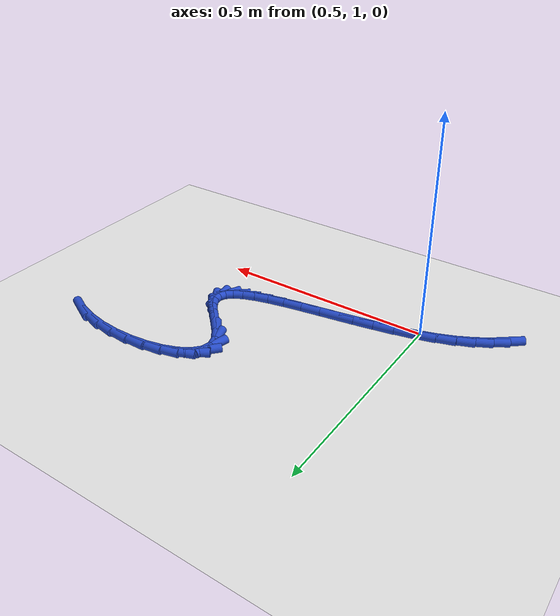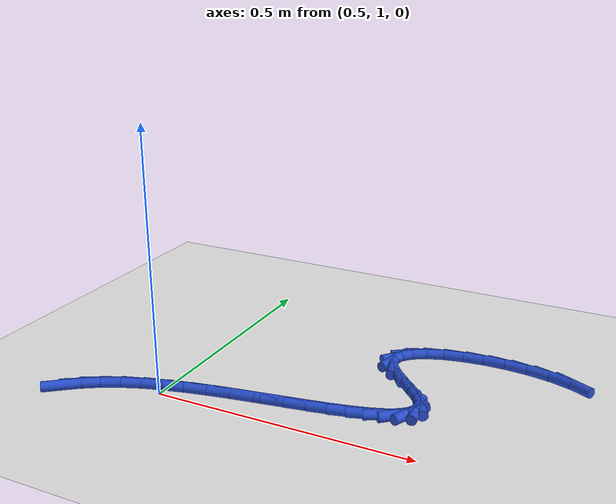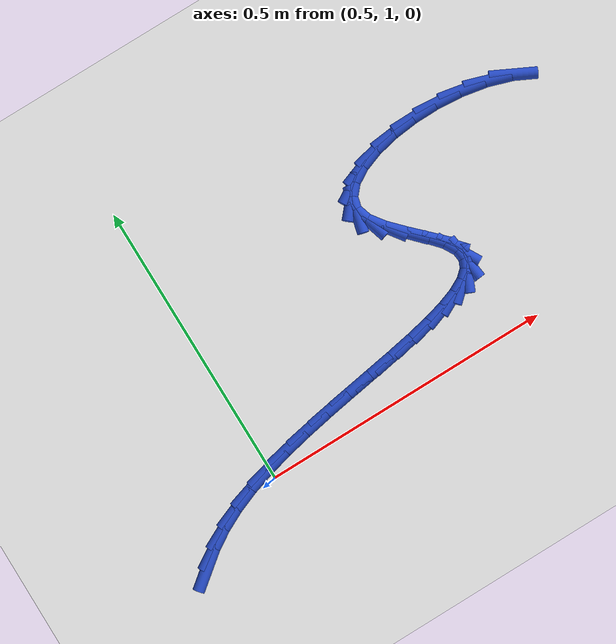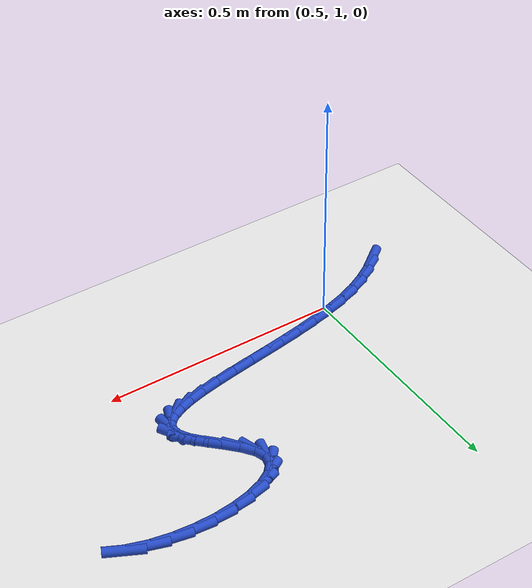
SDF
<sdf version="1.6">
 <world name="default">
  <model name="ground_plane">
   <static>1</static>
   <link name="link">
    <collision name="collision">
     <geometry><plane><normal>0 0 1</normal><size>100 100</size></plane></geometry>
     <surface><friction><ode><mu>100</mu><mu2>50</mu2></ode></friction></surface>
    </collision>
    <visual name="visual">
     <cast_shadows>0</cast_shadows>
     <geometry><plane><normal>0 0 1</normal><size>100 100</size></plane></geometry>
     <material>
      <script><uri>file://media/materials/scripts/gazebo.material</uri><name>Gazebo/WhiteGlow</name></script>
     </material>
    </visual>
   </link>
  </model>
  <model name="line">
   <link name="link_32">
    <pose>0.33232368794220474 0.9345395138687543 0.01 0 1.57 0.6674799219659406</pose>
    <collision name="collision">
     <geometry><cylinder><radius>0.01</radius><length>0.08</length></cylinder></geometry>
    </collision>
    <visual name="visual">
     <material>
      <script><name>Gazebo/Blue</name><uri>file://media/materials/scripts/gazebo.material</uri></script>
     </material>
     <geometry><cylinder><radius>0.01</radius><length>0.08</length></cylinder></geometry>
    </visual>
   </link>
   <link name="link_33">
    <pose>0.35845276269961285 0.9551334182911259 0.01 0 1.57 0.5598737728286589</pose>
    <collision name="collision">
     <geometry><cylinder><radius>0.01</radius><length>0.08</length></cylinder></geometry>
    </collision>
    <visual name="visual">
     <material>
      <script><name>Gazebo/Blue</name><uri>file://media/materials/scripts/gazebo.material</uri></script>
     </material>
     <geometry><cylinder><radius>0.01</radius><length>0.08</length></cylinder></geometry>
    </visual>
   </link>
   <link name="link_34">
    <pose>0.38820202227261824 0.9737794719710365 0.01 0 1.57 0.462366194935475</pose>
    <collision name="collision">
     <geometry><cylinder><radius>0.01</radius><length>0.08</length></cylinder></geometry>
    </collision>
    <visual name="visual">
     <material>
      <script><name>Gazebo/Blue</name><uri>file://media/materials/scripts/gazebo.material</uri></script>
     </material>
     <geometry><cylinder><radius>0.01</radius><length>0.08</length></cylinder></geometry>
    </visual>
   </link>
   <link name="link_35">
    <pose>0.4215832749769152 0.9904166635215741 0.01 0 1.57 0.3748559651297808</pose>
    <collision name="collision">
     <geometry><cylinder><radius>0.01</radius><length>0.08</length></cylinder></geometry>
    </collision>
    <visual name="visual">
     <material>
      <script><name>Gazebo/Blue</name><uri>file://media/materials/scripts/gazebo.material</uri></script>
     </material>
     <geometry><cylinder><radius>0.01</radius><length>0.08</length></cylinder></geometry>
    </visual>
   </link>
   <link name="link_36">
    <pose>0.4586076440816507 1.0049842804329159 0.01 0 1.57 0.3005961824647087</pose>
    <collision name="collision">
     <geometry><cylinder><radius>0.01</radius><length>0.08</length></cylinder></geometry>
    </collision>
    <visual name="visual">
     <material>
      <script><name>Gazebo/Blue</name><uri>file://media/materials/scripts/gazebo.material</uri></script>
     </material>
     <geometry><cylinder><radius>0.01</radius><length>0.08</length></cylinder></geometry>
    </visual>
   </link>
   <link name="link_37">
    <pose>0.49905495005863604 1.0175225246619781 0.01 0 1.57 0.2455334116099302</pose>
    <collision name="collision">
     <geometry><cylinder><radius>0.01</radius><length>0.08</length></cylinder></geometry>
    </collision>
    <visual name="visual">
     <material>
      <script><name>Gazebo/Blue</name><uri>file://media/materials/scripts/gazebo.material</uri></script>
     </material>
     <geometry><cylinder><radius>0.01</radius><length>0.08</length></cylinder></geometry>
    </visual>
   </link>
   <link name="link_38">
    <pose>0.5421384283040468 1.0283187920233734 0.01 0 1.57 0.20615525021939676</pose>
    <collision name="collision">
     <geometry><cylinder><radius>0.01</radius><length>0.08</length></cylinder></geometry>
    </collision>
    <visual name="visual">
     <material>
      <script><name>Gazebo/Blue</name><uri>file://media/materials/scripts/gazebo.material</uri></script>
     </material>
     <geometry><cylinder><radius>0.01</radius><length>0.08</length></cylinder></geometry>
    </visual>
   </link>
   <link name="link_39">
    <pose>0.5869861566062353 1.0376976315122262 0.01 0 1.57 0.1792097871674355</pose>
    <collision name="collision">
     <geometry><cylinder><radius>0.01</radius><length>0.08</length></cylinder></geometry>
    </collision>
    <visual name="visual">
     <material>
      <script><name>Gazebo/Blue</name><uri>file://media/materials/scripts/gazebo.material</uri></script>
     </material>
     <geometry><cylinder><radius>0.01</radius><length>0.08</length></cylinder></geometry>
    </visual>
   </link>
   <link name="link_40">
    <pose>0.6327262127535523 1.0459835921236607 0.01 0 1.57 0.16282779220886007</pose>
    <collision name="collision">
     <geometry><cylinder><radius>0.01</radius><length>0.08</length></cylinder></geometry>
    </collision>
    <visual name="visual">
     <material>
      <script><name>Gazebo/Blue</name><uri>file://media/materials/scripts/gazebo.material</uri></script>
     </material>
     <geometry><cylinder><radius>0.01</radius><length>0.08</length></cylinder></geometry>
    </visual>
   </link>
   <link name="link_41">
    <pose>0.6784866745343503 1.0535012228528013 0.01 0 1.57 0.15623173205487667</pose>
    <collision name="collision">
     <geometry><cylinder><radius>0.01</radius><length>0.08</length></cylinder></geometry>
    </collision>
    <visual name="visual">
     <material>
      <script><name>Gazebo/Blue</name><uri>file://media/materials/scripts/gazebo.material</uri></script>
     </material>
     <geometry><cylinder><radius>0.01</radius><length>0.08</length></cylinder></geometry>
    </visual>
   </link>
   <link name="link_42">
    <pose>0.7233956197369801 1.0605750726947727 0.01 0 1.57 0.15966967953347624</pose>
    <collision name="collision">
     <geometry><cylinder><radius>0.01</radius><length>0.08</length></cylinder></geometry>
    </collision>
    <visual name="visual">
     <material>
      <script><name>Gazebo/Blue</name><uri>file://media/materials/scripts/gazebo.material</uri></script>
     </material>
     <geometry><cylinder><radius>0.01</radius><length>0.08</length></cylinder></geometry>
    </visual>
   </link>
   <link name="link_43">
    <pose>0.7665811261497935 1.0675296906446987 0.01 0 1.57 0.17459976128015814</pose>
    <collision name="collision">
     <geometry><cylinder><radius>0.01</radius><length>0.08</length></cylinder></geometry>
    </collision>
    <visual name="visual">
     <material>
      <script><name>Gazebo/Blue</name><uri>file://media/materials/scripts/gazebo.material</uri></script>
     </material>
     <geometry><cylinder><radius>0.01</radius><length>0.08</length></cylinder></geometry>
    </visual>
   </link>
   <link name="link_44">
    <pose>0.8071712715611429 1.0746896256977045 0.01 0 1.57 0.20425585236347724</pose>
    <collision name="collision">
     <geometry><cylinder><radius>0.01</radius><length>0.08</length></cylinder></geometry>
    </collision>
    <visual name="visual">
     <material>
      <script><name>Gazebo/Blue</name><uri>file://media/materials/scripts/gazebo.material</uri></script>
     </material>
     <geometry><cylinder><radius>0.01</radius><length>0.08</length></cylinder></geometry>
    </visual>
   </link>
   <link name="link_45">
    <pose>0.8442941337593788 1.0823794268489142 0.01 0 1.57 0.2549527005088165</pose>
    <collision name="collision">
     <geometry><cylinder><radius>0.01</radius><length>0.08</length></cylinder></geometry>
    </collision>
    <visual name="visual">
     <material>
      <script><name>Gazebo/Blue</name><uri>file://media/materials/scripts/gazebo.material</uri></script>
     </material>
     <geometry><cylinder><radius>0.01</radius><length>0.08</length></cylinder></geometry>
    </visual>
   </link>
   <link name="link_46">
    <pose>0.8770777905328535 1.090923643093452 0.01 0 1.57 0.3390248917568101</pose>
    <collision name="collision">
     <geometry><cylinder><radius>0.01</radius><length>0.08</length></cylinder></geometry>
    </collision>
    <visual name="visual">
     <material>
      <script><name>Gazebo/Blue</name><uri>file://media/materials/scripts/gazebo.material</uri></script>
     </material>
     <geometry><cylinder><radius>0.01</radius><length>0.08</length></cylinder></geometry>
    </visual>
   </link>
   <link name="link_47">
    <pose>0.9046503196699183 1.1006468234264424 0.01 0 1.57 0.48142815267958466</pose>
    <collision name="collision">
     <geometry><cylinder><radius>0.01</radius><length>0.08</length></cylinder></geometry>
    </collision>
    <visual name="visual">
     <material>
      <script><name>Gazebo/Blue</name><uri>file://media/materials/scripts/gazebo.material</uri></script>
     </material>
     <geometry><cylinder><radius>0.01</radius><length>0.08</length></cylinder></geometry>
    </visual>
   </link>
   <link name="link_48">
    <pose>0.926139798958925 1.1118735168430103 0.01 0 1.57 0.731814446814402</pose>
    <collision name="collision">
     <geometry><cylinder><radius>0.01</radius><length>0.08</length></cylinder></geometry>
    </collision>
    <visual name="visual">
     <material>
      <script><name>Gazebo/Blue</name><uri>file://media/materials/scripts/gazebo.material</uri></script>
     </material>
     <geometry><cylinder><radius>0.01</radius><length>0.08</length></cylinder></geometry>
    </visual>
   </link>
   <link name="link_49">
    <pose>0.9406743061882248 1.1249282723382792 0.01 0 1.57 1.155387865178105</pose>
    <collision name="collision">
     <geometry><cylinder><radius>0.01</radius><length>0.08</length></cylinder></geometry>
    </collision>
    <visual name="visual">
     <material>
      <script><name>Gazebo/Blue</name><uri>file://media/materials/scripts/gazebo.material</uri></script>
     </material>
     <geometry><cylinder><radius>0.01</radius><length>0.08</length></cylinder></geometry>
    </visual>
   </link>
   <link name="link_50">
    <pose>0.9473819191461701 1.1401356389073745 0.01 0 1.57 -1.4586727570723999</pose>
    <collision name="collision">
     <geometry><cylinder><radius>0.01</radius><length>0.08</length></cylinder></geometry>
    </collision>
    <visual name="visual">
     <material>
      <script><name>Gazebo/Blue</name><uri>file://media/materials/scripts/gazebo.material</uri></script>
     </material>
     <geometry><cylinder><radius>0.01</radius><length>0.08</length></cylinder></geometry>
    </visual>
   </link>
   <link name="link_51">
    <pose>0.9453907156211117 1.1578201655454199 0.01 0 1.57 -1.057074999462949</pose>
    <collision name="collision">
     <geometry><cylinder><radius>0.01</radius><length>0.08</length></cylinder></geometry>
    </collision>
    <visual name="visual">
     <material>
      <script><name>Gazebo/Blue</name><uri>file://media/materials/scripts/gazebo.material</uri></script>
     </material>
     <geometry><cylinder><radius>0.01</radius><length>0.08</length></cylinder></geometry>
    </visual>
   </link>
   <link name="link_52">
    <pose>0.9338316665987543 1.178305686006102 0.01 0 1.57 -0.8479654065867887</pose>
    <collision name="collision">
     <geometry><cylinder><radius>0.01</radius><length>0.08</length></cylinder></geometry>
    </collision>
    <visual name="visual">
     <material>
      <script><name>Gazebo/Blue</name><uri>file://media/materials/scripts/gazebo.material</uri></script>
     </material>
     <geometry><cylinder><radius>0.01</radius><length>0.08</length></cylinder></geometry>
    </visual>
   </link>
   <link name="link_53">
    <pose>0.9133313871890353 1.2015462885595396 0.01 0 1.57 -0.7873486888170741</pose>
    <collision name="collision">
     <geometry><cylinder><radius>0.01</radius><length>0.08</length></cylinder></geometry>
    </collision>
    <visual name="visual">
     <material>
      <script><name>Gazebo/Blue</name><uri>file://media/materials/scripts/gazebo.material</uri></script>
     </material>
     <geometry><cylinder><radius>0.01</radius><length>0.08</length></cylinder></geometry>
    </visual>
   </link>
   <link name="link_54">
    <pose>0.8884517037724283 1.2265232186915362 0.01 0 1.57 -0.8152047304556284</pose>
    <collision name="collision">
     <geometry><cylinder><radius>0.01</radius><length>0.08</length></cylinder></geometry>
    </collision>
    <visual name="visual">
     <material>
      <script><name>Gazebo/Blue</name><uri>file://media/materials/scripts/gazebo.material</uri></script>
     </material>
     <geometry><cylinder><radius>0.01</radius><length>0.08</length></cylinder></geometry>
    </visual>
   </link>
   <link name="link_55">
    <pose>0.8643939701368678 1.2520596211962296 0.01 0 1.57 -0.9443266670071779</pose>
    <collision name="collision">
     <geometry><cylinder><radius>0.01</radius><length>0.08</length></cylinder></geometry>
    </collision>
    <visual name="visual">
     <material>
      <script><name>Gazebo/Blue</name><uri>file://media/materials/scripts/gazebo.material</uri></script>
     </material>
     <geometry><cylinder><radius>0.01</radius><length>0.08</length></cylinder></geometry>
    </visual>
   </link>
   <link name="link_56">
    <pose>0.8463595400702895 1.276978640867758 0.01 0 1.57 -1.2756371198639962</pose>
    <collision name="collision">
     <geometry><cylinder><radius>0.01</radius><length>0.08</length></cylinder></geometry>
    </collision>
    <visual name="visual">
     <material>
      <script><name>Gazebo/Blue</name><uri>file://media/materials/scripts/gazebo.material</uri></script>
     </material>
     <geometry><cylinder><radius>0.01</radius><length>0.08</length></cylinder></geometry>
    </visual>
   </link>
   <link name="link_57">
    <pose>0.8393194399337724 1.3001338079470532 0.01 0 1.57 1.3215550835016123</pose>
    <collision name="collision">
     <geometry><cylinder><radius>0.01</radius><length>0.08</length></cylinder></geometry>
    </collision>
    <visual name="visual">
     <material>
      <script><name>Gazebo/Blue</name><uri>file://media/materials/scripts/gazebo.material</uri></script>
     </material>
     <geometry><cylinder><radius>0.01</radius><length>0.08</length></cylinder></geometry>
    </visual>
   </link>
   <link name="link_58">
    <pose>0.8445949910264087 1.3208601321084388 0.01 0 1.57 0.8447809884516944</pose>
    <collision name="collision">
     <geometry><cylinder><radius>0.01</radius><length>0.08</length></cylinder></geometry>
    </collision>
    <visual name="visual">
     <material>
      <script><name>Gazebo/Blue</name><uri>file://media/materials/scripts/gazebo.material</uri></script>
     </material>
     <geometry><cylinder><radius>0.01</radius><length>0.08</length></cylinder></geometry>
    </visual>
   </link>
   <link name="link_59">
    <pose>0.860590202516286 1.3388774831089025 0.01 0 1.57 0.5409068925253919</pose>
    <collision name="collision">
     <geometry><cylinder><radius>0.01</radius><length>0.08</length></cylinder></geometry>
    </collision>
    <visual name="visual">
     <material>
      <script><name>Gazebo/Blue</name><uri>file://media/materials/scripts/gazebo.material</uri></script>
     </material>
     <geometry><cylinder><radius>0.01</radius><length>0.08</length></cylinder></geometry>
    </visual>
   </link>
   <link name="link_60">
    <pose>0.8856275422159168 1.353916487872111 0.01 0 1.57 0.349009854665366</pose>
    <collision name="collision">
     <geometry><cylinder><radius>0.01</radius><length>0.08</length></cylinder></geometry>
    </collision>
    <visual name="visual">
     <material>
      <script><name>Gazebo/Blue</name><uri>file://media/materials/scripts/gazebo.material</uri></script>
     </material>
     <geometry><cylinder><radius>0.01</radius><length>0.08</length></cylinder></geometry>
    </visual>
   </link>
   <link name="link_61">
    <pose>0.9180294779378143 1.3657077733217313 0.01 0 1.57 0.213909653808524</pose>
    <collision name="collision">
     <geometry><cylinder><radius>0.01</radius><length>0.08</length></cylinder></geometry>
    </collision>
    <visual name="visual">
     <material>
      <script><name>Gazebo/Blue</name><uri>file://media/materials/scripts/gazebo.material</uri></script>
     </material>
     <geometry><cylinder><radius>0.01</radius><length>0.08</length></cylinder></geometry>
    </visual>
   </link>
   <link name="link_62">
    <pose>0.9561184774944903 1.3739819663814297 0.01 0 1.57 0.10619951335669156</pose>
    <collision name="collision">
     <geometry><cylinder><radius>0.01</radius><length>0.08</length></cylinder></geometry>
    </collision>
    <visual name="visual">
     <material>
      <script><name>Gazebo/Blue</name><uri>file://media/materials/scripts/gazebo.material</uri></script>
     </material>
     <geometry><cylinder><radius>0.01</radius><length>0.08</length></cylinder></geometry>
    </visual>
   </link>
   <link name="link_63">
    <pose>0.9982170086984588 1.3784696939748728 0.01 0 1.57 0.009720240614919409</pose>
    <collision name="collision">
     <geometry><cylinder><radius>0.01</radius><length>0.08</length></cylinder></geometry>
    </collision>
    <visual name="visual">
     <material>
      <script><name>Gazebo/Blue</name><uri>file://media/materials/scripts/gazebo.material</uri></script>
     </material>
     <geometry><cylinder><radius>0.01</radius><length>0.08</length></cylinder></geometry>
    </visual>
   </link>
   <link name="link_64">
    <pose>1.0426475393622312 1.3789015830257279 0.01 0 1.57 -0.08614146693852491</pose>
    <collision name="collision">
     <geometry><cylinder><radius>0.01</radius><length>0.08</length></cylinder></geometry>
    </collision>
    <visual name="visual">
     <material>
      <script><name>Gazebo/Blue</name><uri>file://media/materials/scripts/gazebo.material</uri></script>
     </material>
     <geometry><cylinder><radius>0.01</radius><length>0.08</length></cylinder></geometry>
    </visual>
   </link>
   <link name="link_65">
    <pose>1.0877325372983209 1.3750082604576612 0.01 0 1.57 -0.1903047087714762</pose>
    <collision name="collision">
     <geometry><cylinder><radius>0.01</radius><length>0.08</length></cylinder></geometry>
    </collision>
    <visual name="visual">
     <material>
      <script><name>Gazebo/Blue</name><uri>file://media/materials/scripts/gazebo.material</uri></script>
     </material>
     <geometry><cylinder><radius>0.01</radius><length>0.08</length></cylinder></geometry>
    </visual>
   </link>
   <link name="link_66">
    <pose>1.131794470319241 1.3665203531943397 0.01 0 1.57 -0.31225011246614415</pose>
    <collision name="collision">
     <geometry><cylinder><radius>0.01</radius><length>0.08</length></cylinder></geometry>
    </collision>
    <visual name="visual">
     <material>
      <script><name>Gazebo/Blue</name><uri>file://media/materials/scripts/gazebo.material</uri></script>
     </material>
     <geometry><cylinder><radius>0.01</radius><length>0.08</length></cylinder></geometry>
    </visual>
   </link>
   <link name="link_67">
    <pose>1.1731558062375036 1.35316848815943 0.01 0 1.57 -0.4634792031064176</pose>
    <collision name="collision">
     <geometry><cylinder><radius>0.01</radius><length>0.08</length></cylinder></geometry>
    </collision>
    <visual name="visual">
     <material>
      <script><name>Gazebo/Blue</name><uri>file://media/materials/scripts/gazebo.material</uri></script>
     </material>
     <geometry><cylinder><radius>0.01</radius><length>0.08</length></cylinder></geometry>
    </visual>
   </link>
  </model>
 </world>
</sdf>
